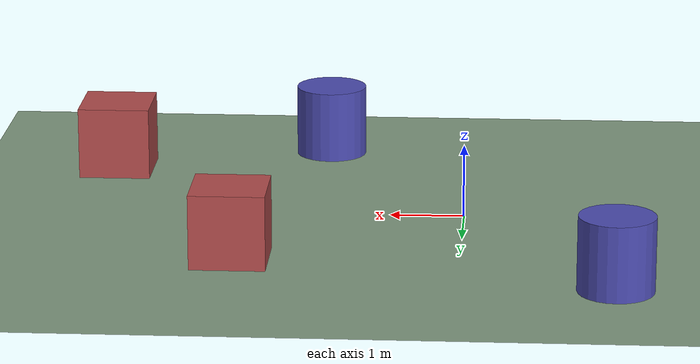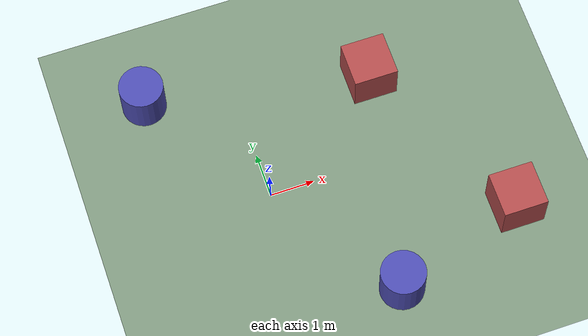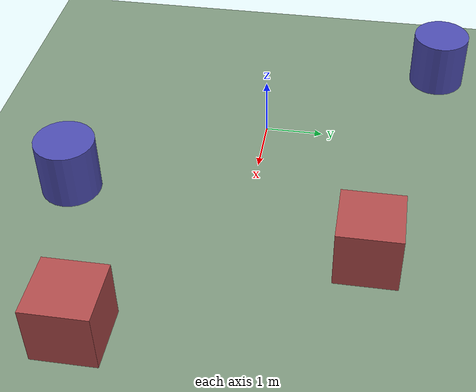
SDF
<?xml version="1.0" ?>
<sdf version="1.9">
  <world name="go2_obstacle_world">
    <physics name="default_physics" type="ode">
      <max_step_size>0.001</max_step_size>
      <real_time_factor>1.0</real_time_factor>
    </physics>

    <plugin filename="libIgnitionSystemPlugin.so" name="ignition::gazebo::Systems::Physics" />
    <plugin filename="libIgnitionSystemPlugin.so" name="ignition::gazebo::Systems::UserCommands" />
    <plugin filename="libIgnitionSystemPlugin.so" name="ignition::gazebo::Systems::SceneTransformer" />
    <plugin filename="libIgnitionSystemPlugin.so" name="ignition::gazebo::Systems::Contact" />
    <plugin filename="libIgnitionSystemPlugin.so" name="ignition::gazebo::Systems::Imu" />
    <plugin filename="libIgnitionSystemPlugin.so" name="ignition::gazebo::Systems::Rendering" />

    <light type="directional" name="sun">
      <cast_shadows>true</cast_shadows>
      <pose>0 0 10 0 0 0</pose>
      <diffuse>0.8 0.8 0.8 1</diffuse>
      <specular>0.2 0.2 0.2 1</specular>
      <attenuation>
        <range>1000</range>
        <constant>0.9</constant>
        <linear>0.01</linear>
        <quadratic>0.001</quadratic>
      </attenuation>
      <direction>-0.5 0.1 -0.9</direction>
    </light>

    <!-- Ground plane -->
    <model name="ground_plane">
      <static>true</static>
      <link name="link">
        <collision name="collision">
          <geometry>
            <plane>
              <normal>0 0 1</normal>
              <size>100 100</size>
            </plane>
          </geometry>
          <surface>
            <friction>
              <ode>
                <mu>1.5</mu>
                <mu2>1.5</mu2>
              </ode>
            </friction>
          </surface>
        </collision>
        <visual name="visual">
          <geometry>
            <plane>
              <normal>0 0 1</normal>
              <size>100 100</size>
            </plane>
          </geometry>
          <material>
            <ambient>0.5 0.6 0.5 1</ambient>
            <diffuse>0.5 0.6 0.5 1</diffuse>
            <specular>0.5 0.6 0.5 1</specular>
          </material>
        </visual>
      </link>
    </model>

    <!-- Obstacles -->
    <!-- Box obstacle 1 -->
    <model name="box_1">
      <pose>3 2 0.5 0 0 0</pose>
      <link name="box_link">
        <collision name="collision">
          <geometry>
            <box>
              <size>1.0 1.0 1.0</size>
            </box>
          </geometry>
        </collision>
        <visual name="visual">
          <geometry>
            <box>
              <size>1.0 1.0 1.0</size>
            </box>
          </geometry>
          <material>
            <ambient>0.7 0.3 0.3 1</ambient>
            <diffuse>0.7 0.3 0.3 1</diffuse>
            <specular>0.7 0.3 0.3 1</specular>
          </material>
        </visual>
      </link>
    </model>

    <!-- Box obstacle 2 -->
    <model name="box_2">
      <pose>5 -2 0.5 0 0 0</pose>
      <link name="box_link">
        <collision name="collision">
          <geometry>
            <box>
              <size>1.0 1.0 1.0</size>
            </box>
          </geometry>
        </collision>
        <visual name="visual">
          <geometry>
            <box>
              <size>1.0 1.0 1.0</size>
            </box>
          </geometry>
          <material>
            <ambient>0.7 0.3 0.3 1</ambient>
            <diffuse>0.7 0.3 0.3 1</diffuse>
            <specular>0.7 0.3 0.3 1</specular>
          </material>
        </visual>
      </link>
    </model>

    <!-- Cylinder obstacle 1 -->
    <model name="cylinder_1">
      <pose>2 -3 0.5 0 0 0</pose>
      <link name="cylinder_link">
        <collision name="collision">
          <geometry>
            <cylinder>
              <radius>0.5</radius>
              <length>1.0</length>
            </cylinder>
          </geometry>
        </collision>
        <visual name="visual">
          <geometry>
            <cylinder>
              <radius>0.5</radius>
              <length>1.0</length>
            </cylinder>
          </geometry>
          <material>
            <ambient>0.3 0.3 0.7 1</ambient>
            <diffuse>0.3 0.3 0.7 1</diffuse>
            <specular>0.3 0.3 0.7 1</specular>
          </material>
        </visual>
      </link>
    </model>

    <!-- Cylinder obstacle 2 -->
    <model name="cylinder_2">
      <pose>-2 3 0.5 0 0 0</pose>
      <link name="cylinder_link">
        <collision name="collision">
          <geometry>
            <cylinder>
              <radius>0.5</radius>
              <length>1.0</length>
            </cylinder>
          </geometry>
        </collision>
        <visual name="visual">
          <geometry>
            <cylinder>
              <radius>0.5</radius>
              <length>1.0</length>
            </cylinder>
          </geometry>
          <material>
            <ambient>0.3 0.3 0.7 1</ambient>
            <diffuse>0.3 0.3 0.7 1</diffuse>
            <specular>0.3 0.3 0.7 1</specular>
          </material>
        </visual>
      </link>
    </model>
  </world>
</sdf>
